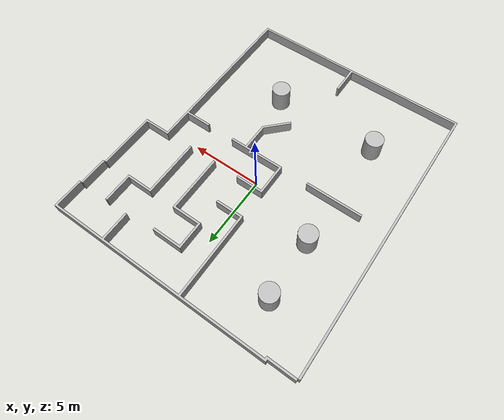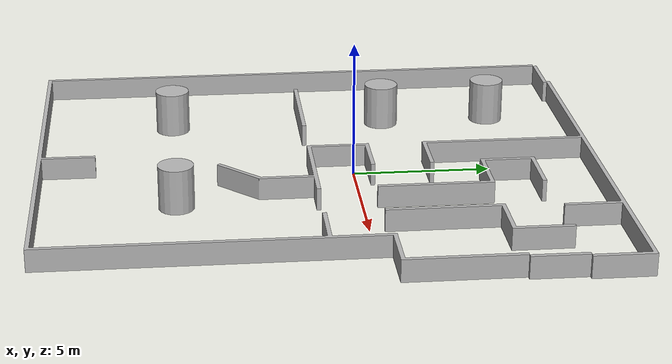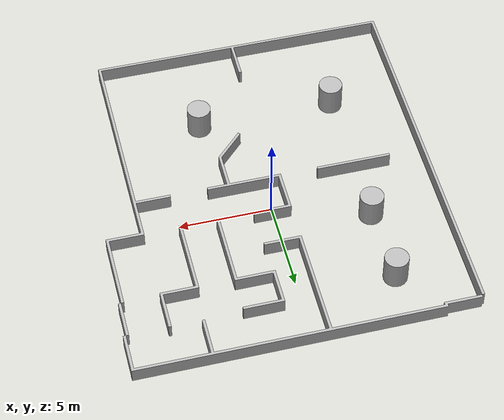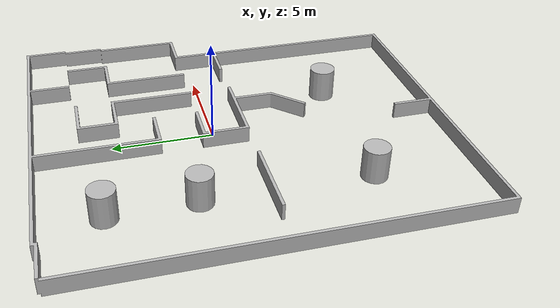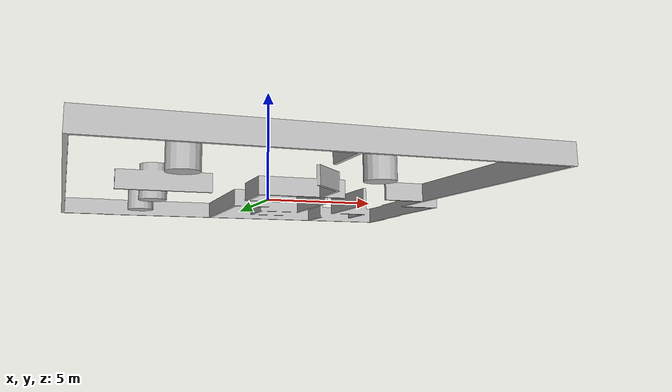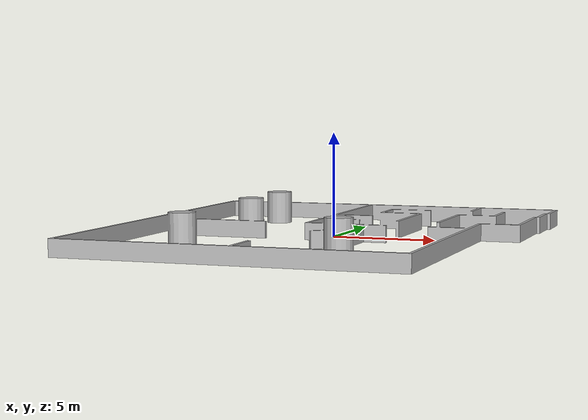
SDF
<?xml version="1.0" ?>
<sdf version="1.5">
  <model name="ARCLAB">
    <static>true</static>
    <pose>0 0 0 0 0 0</pose>
    <link name="walls">
      <collision name="collision">
        <geometry>
          <mesh>
            <uri>model://home/meshes/home.dae</uri>
          </mesh>
        </geometry>
      </collision>
      <visual name="visual">
        <geometry>
          <mesh>
            <uri>model://home/meshes/home.dae</uri>
          </mesh>
        </geometry>
        <cast_shadows>false</cast_shadows>
      </visual>
    </link>
  </model>
</sdf>
